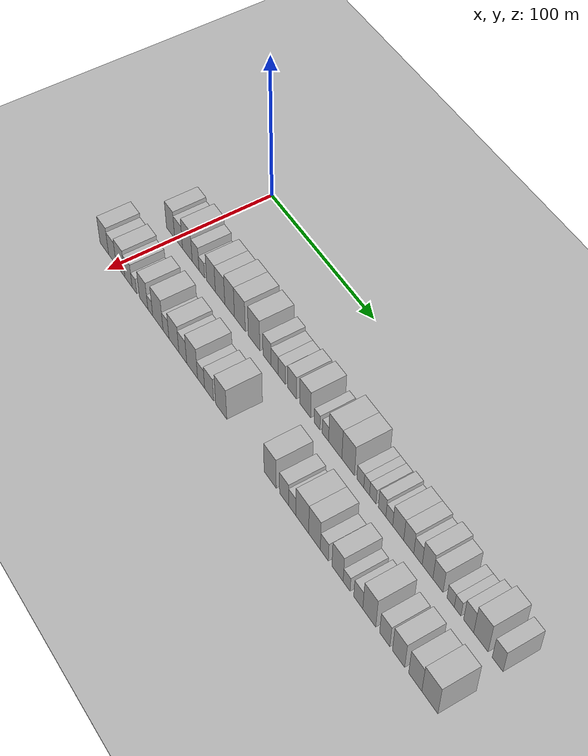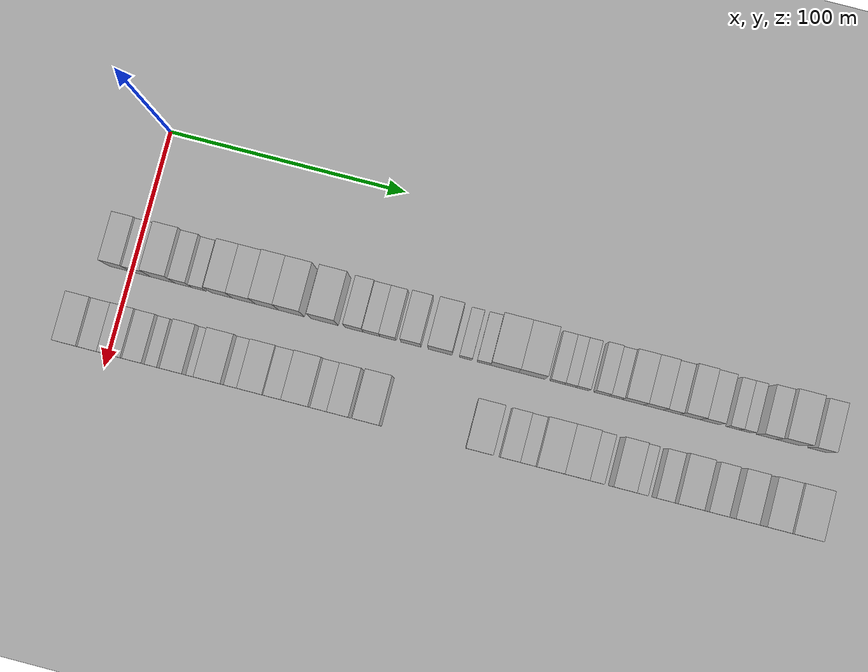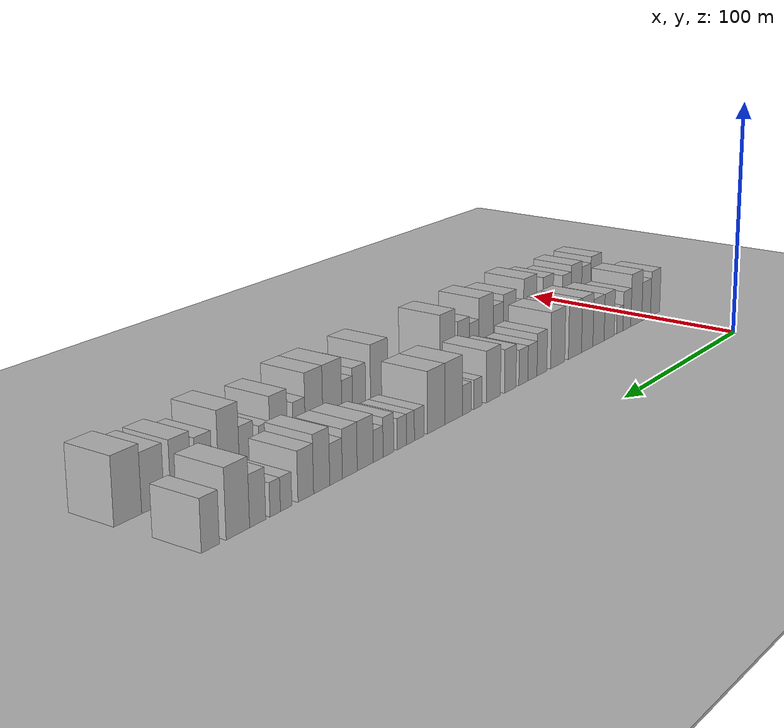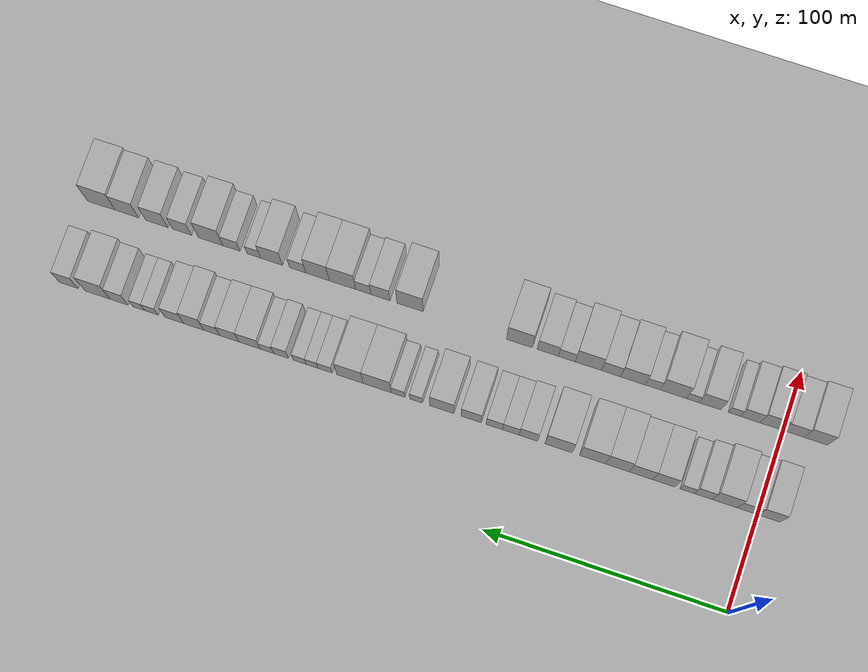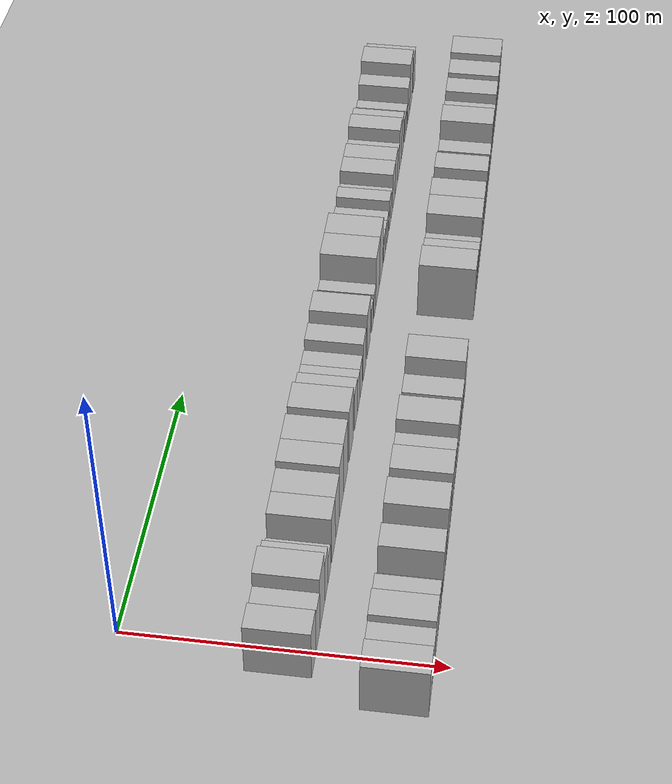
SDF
<sdf version="1.6">
 <world name="default">
  <include><name>ground_plane_1</name><uri>model://HANNAS_ground_plane</uri></include>
  <include>
   <name>ground_plane_2</name>
   <uri>model://HANNAS_ground_plane</uri>
   <pose>100 0 0  0 0 0</pose>
  </include>
  <model name="building_33">
   <static>1</static>
   <pose>50.0000 -4.5877 0 0.000000 0.000000 0.000000</pose>
   <link name="link">
    <pose>0 0 10.50 0 0 0</pose>
    <collision name="collision"><geometry><box><size>20.0000 8.9723 21.0000</size></box></geometry></collision>
    <visual name="visual">
     <cast_shadows>0</cast_shadows>
     <geometry><box><size>20.0000 8.9723 21.0000</size></box></geometry>
     <material>
      <script>
       <uri>model://HANNAS_wall/materials/scripts</uri>
       <uri>model://HANNAS_wall/materials/textures</uri>
       <name>vrc/HANNAS_wall</name>
      </script>
     </material>
    </visual>
   </link>
  </model>
  <model name="building_34">
   <static>1</static>
   <pose>50.0000 4.1626 0 0.000000 0.000000 0.000000</pose>
   <link name="link">
    <pose>0 0 9.00 0 0 0</pose>
    <collision name="collision"><geometry><box><size>20.0000 8.5283 18.0000</size></box></geometry></collision>
    <visual name="visual">
     <cast_shadows>0</cast_shadows>
     <geometry><box><size>20.0000 8.5283 18.0000</size></box></geometry>
     <material>
      <script>
       <uri>model://HANNAS_wall/materials/scripts</uri>
       <uri>model://HANNAS_wall/materials/textures</uri>
       <name>vrc/HANNAS_wall</name>
      </script>
     </material>
    </visual>
   </link>
  </model>
  <model name="building_35">
   <static>1</static>
   <pose>50.0000 13.5947 0 0.000000 0.000000 0.000000</pose>
   <link name="link">
    <pose>0 0 12.00 0 0 0</pose>
    <collision name="collision"><geometry><box><size>20.0000 10.3360 24.0000</size></box></geometry></collision>
    <visual name="visual">
     <cast_shadows>0</cast_shadows>
     <geometry><box><size>20.0000 10.3360 24.0000</size></box></geometry>
     <material>
      <script>
       <uri>model://HANNAS_wall/materials/scripts</uri>
       <uri>model://HANNAS_wall/materials/textures</uri>
       <name>vrc/HANNAS_wall</name>
      </script>
     </material>
    </visual>
   </link>
  </model>
  <model name="building_36">
   <static>1</static>
   <pose>50.0000 22.3643 0 0.000000 0.000000 0.000000</pose>
   <link name="link">
    <pose>0 0 9.00 0 0 0</pose>
    <collision name="collision"><geometry><box><size>20.0000 7.2032 18.0000</size></box></geometry></collision>
    <visual name="visual">
     <cast_shadows>0</cast_shadows>
     <geometry><box><size>20.0000 7.2032 18.0000</size></box></geometry>
     <material>
      <script>
       <uri>model://HANNAS_wall/materials/scripts</uri>
       <uri>model://HANNAS_wall/materials/textures</uri>
       <name>vrc/HANNAS_wall</name>
      </script>
     </material>
    </visual>
   </link>
  </model>
  <model name="building_37">
   <static>1</static>
   <pose>50.0000 28.9423 0 0.000000 0.000000 0.000000</pose>
   <link name="link">
    <pose>0 0 6.00 0 0 0</pose>
    <collision name="collision"><geometry><box><size>20.0000 5.9528 12.0000</size></box></geometry></collision>
    <visual name="visual">
     <cast_shadows>0</cast_shadows>
     <geometry><box><size>20.0000 5.9528 12.0000</size></box></geometry>
     <material>
      <script>
       <uri>model://HANNAS_wall/materials/scripts</uri>
       <uri>model://HANNAS_wall/materials/textures</uri>
       <name>vrc/HANNAS_wall</name>
      </script>
     </material>
    </visual>
   </link>
  </model>
  <model name="building_38">
   <static>1</static>
   <pose>50.0000 38.4510 0 0.000000 0.000000 0.000000</pose>
   <link name="link">
    <pose>0 0 10.50 0 0 0</pose>
    <collision name="collision"><geometry><box><size>20.0000 9.0646 21.0000</size></box></geometry></collision>
    <visual name="visual">
     <cast_shadows>0</cast_shadows>
     <geometry><box><size>20.0000 9.0646 21.0000</size></box></geometry>
     <material>
      <script>
       <uri>model://HANNAS_wall/materials/scripts</uri>
       <uri>model://HANNAS_wall/materials/textures</uri>
       <name>vrc/HANNAS_wall</name>
      </script>
     </material>
    </visual>
   </link>
  </model>
  <model name="building_39">
   <static>1</static>
   <pose>50.0000 47.8418 0 0.000000 0.000000 0.000000</pose>
   <link name="link">
    <pose>0 0 10.50 0 0 0</pose>
    <collision name="collision"><geometry><box><size>20.0000 9.7169 21.0000</size></box></geometry></collision>
    <visual name="visual">
     <cast_shadows>0</cast_shadows>
     <geometry><box><size>20.0000 9.7169 21.0000</size></box></geometry>
     <material>
      <script>
       <uri>model://HANNAS_wall/materials/scripts</uri>
       <uri>model://HANNAS_wall/materials/textures</uri>
       <name>vrc/HANNAS_wall</name>
      </script>
     </material>
    </visual>
   </link>
  </model>
  <model name="building_40">
   <static>1</static>
   <pose>50.0000 57.5797 0 0.000000 0.000000 0.000000</pose>
   <link name="link">
    <pose>0 0 12.00 0 0 0</pose>
    <collision name="collision"><geometry><box><size>20.0000 9.7589 24.0000</size></box></geometry></collision>
    <visual name="visual">
     <cast_shadows>0</cast_shadows>
     <geometry><box><size>20.0000 9.7589 24.0000</size></box></geometry>
     <material>
      <script>
       <uri>model://HANNAS_wall/materials/scripts</uri>
       <uri>model://HANNAS_wall/materials/textures</uri>
       <name>vrc/HANNAS_wall</name>
      </script>
     </material>
    </visual>
   </link>
  </model>
  <model name="building_41">
   <static>1</static>
   <pose>50.0000 67.8784 0 0.000000 0.000000 0.000000</pose>
   <link name="link">
    <pose>0 0 12.00 0 0 0</pose>
    <collision name="collision"><geometry><box><size>20.0000 10.8384 24.0000</size></box></geometry></collision>
    <visual name="visual">
     <cast_shadows>0</cast_shadows>
     <geometry><box><size>20.0000 10.8384 24.0000</size></box></geometry>
     <material>
      <script>
       <uri>model://HANNAS_wall/materials/scripts</uri>
       <uri>model://HANNAS_wall/materials/textures</uri>
       <name>vrc/HANNAS_wall</name>
      </script>
     </material>
    </visual>
   </link>
  </model>
  <model name="building_42">
   <static>1</static>
   <pose>50.0000 81.9233 0 0.000000 0.000000 0.000000</pose>
   <link name="link">
    <pose>0 0 12.00 0 0 0</pose>
    <collision name="collision"><geometry><box><size>20.0000 11.2516 24.0000</size></box></geometry></collision>
    <visual name="visual">
     <cast_shadows>0</cast_shadows>
     <geometry><box><size>20.0000 11.2516 24.0000</size></box></geometry>
     <material>
      <script>
       <uri>model://HANNAS_wall/materials/scripts</uri>
       <uri>model://HANNAS_wall/materials/textures</uri>
       <name>vrc/HANNAS_wall</name>
      </script>
     </material>
    </visual>
   </link>
  </model>
  <model name="building_43">
   <static>1</static>
   <pose>50.0000 94.3751 0 0.000000 0.000000 0.000000</pose>
   <link name="link">
    <pose>0 0 9.00 0 0 0</pose>
    <collision name="collision"><geometry><box><size>20.0000 7.6520 18.0000</size></box></geometry></collision>
    <visual name="visual">
     <cast_shadows>0</cast_shadows>
     <geometry><box><size>20.0000 7.6520 18.0000</size></box></geometry>
     <material>
      <script>
       <uri>model://HANNAS_wall/materials/scripts</uri>
       <uri>model://HANNAS_wall/materials/textures</uri>
       <name>vrc/HANNAS_wall</name>
      </script>
     </material>
    </visual>
   </link>
  </model>
  <model name="building_44">
   <static>1</static>
   <pose>50.0000 101.6487 0 0.000000 0.000000 0.000000</pose>
   <link name="link">
    <pose>0 0 7.50 0 0 0</pose>
    <collision name="collision"><geometry><box><size>20.0000 6.8953 15.0000</size></box></geometry></collision>
    <visual name="visual">
     <cast_shadows>0</cast_shadows>
     <geometry><box><size>20.0000 6.8953 15.0000</size></box></geometry>
     <material>
      <script>
       <uri>model://HANNAS_wall/materials/scripts</uri>
       <uri>model://HANNAS_wall/materials/textures</uri>
       <name>vrc/HANNAS_wall</name>
      </script>
     </material>
    </visual>
   </link>
  </model>
  <model name="building_45">
   <static>1</static>
   <pose>50.0000 108.5118 0 0.000000 0.000000 0.000000</pose>
   <link name="link">
    <pose>0 0 7.50 0 0 0</pose>
    <collision name="collision"><geometry><box><size>20.0000 6.8308 15.0000</size></box></geometry></collision>
    <visual name="visual">
     <cast_shadows>0</cast_shadows>
     <geometry><box><size>20.0000 6.8308 15.0000</size></box></geometry>
     <material>
      <script>
       <uri>model://HANNAS_wall/materials/scripts</uri>
       <uri>model://HANNAS_wall/materials/textures</uri>
       <name>vrc/HANNAS_wall</name>
      </script>
     </material>
    </visual>
   </link>
  </model>
  <model name="building_46">
   <static>1</static>
   <pose>50.0000 118.1153 0 0.000000 0.000000 0.000000</pose>
   <link name="link">
    <pose>0 0 9.00 0 0 0</pose>
    <collision name="collision"><geometry><box><size>20.0000 8.3763 18.0000</size></box></geometry></collision>
    <visual name="visual">
     <cast_shadows>0</cast_shadows>
     <geometry><box><size>20.0000 8.3763 18.0000</size></box></geometry>
     <material>
      <script>
       <uri>model://HANNAS_wall/materials/scripts</uri>
       <uri>model://HANNAS_wall/materials/textures</uri>
       <name>vrc/HANNAS_wall</name>
      </script>
     </material>
    </visual>
   </link>
  </model>
  <model name="building_47">
   <static>1</static>
   <pose>50.0000 130.3355 0 0.000000 0.000000 0.000000</pose>
   <link name="link">
    <pose>0 0 10.50 0 0 0</pose>
    <collision name="collision"><geometry><box><size>20.0000 10.0640 21.0000</size></box></geometry></collision>
    <visual name="visual">
     <cast_shadows>0</cast_shadows>
     <geometry><box><size>20.0000 10.0640 21.0000</size></box></geometry>
     <material>
      <script>
       <uri>model://HANNAS_wall/materials/scripts</uri>
       <uri>model://HANNAS_wall/materials/textures</uri>
       <name>vrc/HANNAS_wall</name>
      </script>
     </material>
    </visual>
   </link>
  </model>
  <model name="building_48">
   <static>1</static>
   <pose>50.0000 141.0523 0 0.000000 0.000000 0.000000</pose>
   <link name="link">
    <pose>0 0 6.00 0 0 0</pose>
    <collision name="collision"><geometry><box><size>20.0000 5.3695 12.0000</size></box></geometry></collision>
    <visual name="visual">
     <cast_shadows>0</cast_shadows>
     <geometry><box><size>20.0000 5.3695 12.0000</size></box></geometry>
     <material>
      <script>
       <uri>model://HANNAS_wall/materials/scripts</uri>
       <uri>model://HANNAS_wall/materials/textures</uri>
       <name>vrc/HANNAS_wall</name>
      </script>
     </material>
    </visual>
   </link>
  </model>
  <model name="building_49">
   <static>1</static>
   <pose>50.0000 148.5847 0 0.000000 0.000000 0.000000</pose>
   <link name="link">
    <pose>0 0 6.00 0 0 0</pose>
    <collision name="collision"><geometry><box><size>20.0000 5.6953 12.0000</size></box></geometry></collision>
    <visual name="visual">
     <cast_shadows>0</cast_shadows>
     <geometry><box><size>20.0000 5.6953 12.0000</size></box></geometry>
     <material>
      <script>
       <uri>model://HANNAS_wall/materials/scripts</uri>
       <uri>model://HANNAS_wall/materials/textures</uri>
       <name>vrc/HANNAS_wall</name>
      </script>
     </material>
    </visual>
   </link>
  </model>
  <model name="building_50">
   <static>1</static>
   <pose>50.0000 157.2870 0 0.000000 0.000000 0.000000</pose>
   <link name="link">
    <pose>0 0 12.00 0 0 0</pose>
    <collision name="collision"><geometry><box><size>20.0000 11.7093 24.0000</size></box></geometry></collision>
    <visual name="visual">
     <cast_shadows>0</cast_shadows>
     <geometry><box><size>20.0000 11.7093 24.0000</size></box></geometry>
     <material>
      <script>
       <uri>model://HANNAS_wall/materials/scripts</uri>
       <uri>model://HANNAS_wall/materials/textures</uri>
       <name>vrc/HANNAS_wall</name>
      </script>
     </material>
    </visual>
   </link>
  </model>
  <model name="building_51">
   <static>1</static>
   <pose>50.0000 168.6387 0 0.000000 0.000000 0.000000</pose>
   <link name="link">
    <pose>0 0 12.00 0 0 0</pose>
    <collision name="collision"><geometry><box><size>20.0000 10.9941 24.0000</size></box></geometry></collision>
    <visual name="visual">
     <cast_shadows>0</cast_shadows>
     <geometry><box><size>20.0000 10.9941 24.0000</size></box></geometry>
     <material>
      <script>
       <uri>model://HANNAS_wall/materials/scripts</uri>
       <uri>model://HANNAS_wall/materials/textures</uri>
       <name>vrc/HANNAS_wall</name>
      </script>
     </material>
    </visual>
   </link>
  </model>
  <model name="building_52">
   <static>1</static>
   <pose>50.0000 179.1250 0 0.000000 0.000000 0.000000</pose>
   <link name="link">
    <pose>0 0 6.00 0 0 0</pose>
    <collision name="collision"><geometry><box><size>20.0000 5.9785 12.0000</size></box></geometry></collision>
    <visual name="visual">
     <cast_shadows>0</cast_shadows>
     <geometry><box><size>20.0000 5.9785 12.0000</size></box></geometry>
     <material>
      <script>
       <uri>model://HANNAS_wall/materials/scripts</uri>
       <uri>model://HANNAS_wall/materials/textures</uri>
       <name>vrc/HANNAS_wall</name>
      </script>
     </material>
    </visual>
   </link>
  </model>
  <model name="building_53">
   <static>1</static>
   <pose>50.0000 184.5413 0 0.000000 0.000000 0.000000</pose>
   <link name="link">
    <pose>0 0 6.00 0 0 0</pose>
    <collision name="collision"><geometry><box><size>20.0000 4.8540 12.0000</size></box></geometry></collision>
    <visual name="visual">
     <cast_shadows>0</cast_shadows>
     <geometry><box><size>20.0000 4.8540 12.0000</size></box></geometry>
     <material>
      <script>
       <uri>model://HANNAS_wall/materials/scripts</uri>
       <uri>model://HANNAS_wall/materials/textures</uri>
       <name>vrc/HANNAS_wall</name>
      </script>
     </material>
    </visual>
   </link>
  </model>
  <model name="building_54">
   <static>1</static>
   <pose>50.0000 189.7033 0 0.000000 0.000000 0.000000</pose>
   <link name="link">
    <pose>0 0 6.00 0 0 0</pose>
    <collision name="collision"><geometry><box><size>20.0000 5.4699 12.0000</size></box></geometry></collision>
    <visual name="visual">
     <cast_shadows>0</cast_shadows>
     <geometry><box><size>20.0000 5.4699 12.0000</size></box></geometry>
     <material>
      <script>
       <uri>model://HANNAS_wall/materials/scripts</uri>
       <uri>model://HANNAS_wall/materials/textures</uri>
       <name>vrc/HANNAS_wall</name>
      </script>
     </material>
    </visual>
   </link>
  </model>
  <model name="building_55">
   <static>1</static>
   <pose>50.0000 197.5572 0 0.000000 0.000000 0.000000</pose>
   <link name="link">
    <pose>0 0 7.50 0 0 0</pose>
    <collision name="collision"><geometry><box><size>20.0000 6.2379 15.0000</size></box></geometry></collision>
    <visual name="visual">
     <cast_shadows>0</cast_shadows>
     <geometry><box><size>20.0000 6.2379 15.0000</size></box></geometry>
     <material>
      <script>
       <uri>model://HANNAS_wall/materials/scripts</uri>
       <uri>model://HANNAS_wall/materials/textures</uri>
       <name>vrc/HANNAS_wall</name>
      </script>
     </material>
    </visual>
   </link>
  </model>
  <model name="building_56">
   <static>1</static>
   <pose>50.0000 203.4955 0 0.000000 0.000000 0.000000</pose>
   <link name="link">
    <pose>0 0 6.00 0 0 0</pose>
    <collision name="collision"><geometry><box><size>20.0000 5.6386 12.0000</size></box></geometry></collision>
    <visual name="visual">
     <cast_shadows>0</cast_shadows>
     <geometry><box><size>20.0000 5.6386 12.0000</size></box></geometry>
     <material>
      <script>
       <uri>model://HANNAS_wall/materials/scripts</uri>
       <uri>model://HANNAS_wall/materials/textures</uri>
       <name>vrc/HANNAS_wall</name>
      </script>
     </material>
    </visual>
   </link>
  </model>
  <model name="building_57">
   <static>1</static>
   <pose>50.0000 210.8074 0 0.000000 0.000000 0.000000</pose>
   <link name="link">
    <pose>0 0 9.00 0 0 0</pose>
    <collision name="collision"><geometry><box><size>20.0000 8.9853 18.0000</size></box></geometry></collision>
    <visual name="visual">
     <cast_shadows>0</cast_shadows>
     <geometry><box><size>20.0000 8.9853 18.0000</size></box></geometry>
     <material>
      <script>
       <uri>model://HANNAS_wall/materials/scripts</uri>
       <uri>model://HANNAS_wall/materials/textures</uri>
       <name>vrc/HANNAS_wall</name>
      </script>
     </material>
    </visual>
   </link>
  </model>
  <model name="building_58">
   <static>1</static>
   <pose>50.0000 219.3591 0 0.000000 0.000000 0.000000</pose>
   <link name="link">
    <pose>0 0 9.00 0 0 0</pose>
    <collision name="collision"><geometry><box><size>20.0000 8.1181 18.0000</size></box></geometry></collision>
    <visual name="visual">
     <cast_shadows>0</cast_shadows>
     <geometry><box><size>20.0000 8.1181 18.0000</size></box></geometry>
     <material>
      <script>
       <uri>model://HANNAS_wall/materials/scripts</uri>
       <uri>model://HANNAS_wall/materials/textures</uri>
       <name>vrc/HANNAS_wall</name>
      </script>
     </material>
    </visual>
   </link>
  </model>
  <model name="building_59">
   <static>1</static>
   <pose>50.0000 226.7735 0 0.000000 0.000000 0.000000</pose>
   <link name="link">
    <pose>0 0 7.50 0 0 0</pose>
    <collision name="collision"><geometry><box><size>20.0000 6.7106 15.0000</size></box></geometry></collision>
    <visual name="visual">
     <cast_shadows>0</cast_shadows>
     <geometry><box><size>20.0000 6.7106 15.0000</size></box></geometry>
     <material>
      <script>
       <uri>model://HANNAS_wall/materials/scripts</uri>
       <uri>model://HANNAS_wall/materials/textures</uri>
       <name>vrc/HANNAS_wall</name>
      </script>
     </material>
    </visual>
   </link>
  </model>
  <model name="building_60">
   <static>1</static>
   <pose>50.0000 234.3361 0 0.000000 0.000000 0.000000</pose>
   <link name="link">
    <pose>0 0 10.50 0 0 0</pose>
    <collision name="collision"><geometry><box><size>20.0000 8.4145 21.0000</size></box></geometry></collision>
    <visual name="visual">
     <cast_shadows>0</cast_shadows>
     <geometry><box><size>20.0000 8.4145 21.0000</size></box></geometry>
     <material>
      <script>
       <uri>model://HANNAS_wall/materials/scripts</uri>
       <uri>model://HANNAS_wall/materials/textures</uri>
       <name>vrc/HANNAS_wall</name>
      </script>
     </material>
    </visual>
   </link>
  </model>
  <model name="building_61">
   <static>1</static>
   <pose>50.0000 242.5292 0 0.000000 0.000000 0.000000</pose>
   <link name="link">
    <pose>0 0 9.00 0 0 0</pose>
    <collision name="collision"><geometry><box><size>20.0000 7.9718 18.0000</size></box></geometry></collision>
    <visual name="visual">
     <cast_shadows>0</cast_shadows>
     <geometry><box><size>20.0000 7.9718 18.0000</size></box></geometry>
     <material>
      <script>
       <uri>model://HANNAS_wall/materials/scripts</uri>
       <uri>model://HANNAS_wall/materials/textures</uri>
       <name>vrc/HANNAS_wall</name>
      </script>
     </material>
    </visual>
   </link>
  </model>
  <model name="building_62">
   <static>1</static>
   <pose>50.0000 252.3252 0 0.000000 0.000000 0.000000</pose>
   <link name="link">
    <pose>0 0 6.00 0 0 0</pose>
    <collision name="collision"><geometry><box><size>20.0000 5.6201 12.0000</size></box></geometry></collision>
    <visual name="visual">
     <cast_shadows>0</cast_shadows>
     <geometry><box><size>20.0000 5.6201 12.0000</size></box></geometry>
     <material>
      <script>
       <uri>model://HANNAS_wall/materials/scripts</uri>
       <uri>model://HANNAS_wall/materials/textures</uri>
       <name>vrc/HANNAS_wall</name>
      </script>
     </material>
    </visual>
   </link>
  </model>
  <model name="building_63">
   <static>1</static>
   <pose>50.0000 257.6734 0 0.000000 0.000000 0.000000</pose>
   <link name="link">
    <pose>0 0 6.00 0 0 0</pose>
    <collision name="collision"><geometry><box><size>20.0000 5.0763 12.0000</size></box></geometry></collision>
    <visual name="visual">
     <cast_shadows>0</cast_shadows>
     <geometry><box><size>20.0000 5.0763 12.0000</size></box></geometry>
     <material>
      <script>
       <uri>model://HANNAS_wall/materials/scripts</uri>
       <uri>model://HANNAS_wall/materials/textures</uri>
       <name>vrc/HANNAS_wall</name>
      </script>
     </material>
    </visual>
   </link>
  </model>
  <model name="building_64">
   <static>1</static>
   <pose>50.0000 266.0096 0 0.000000 0.000000 0.000000</pose>
   <link name="link">
    <pose>0 0 9.00 0 0 0</pose>
    <collision name="collision"><geometry><box><size>20.0000 7.5961 18.0000</size></box></geometry></collision>
    <visual name="visual">
     <cast_shadows>0</cast_shadows>
     <geometry><box><size>20.0000 7.5961 18.0000</size></box></geometry>
     <material>
      <script>
       <uri>model://HANNAS_wall/materials/scripts</uri>
       <uri>model://HANNAS_wall/materials/textures</uri>
       <name>vrc/HANNAS_wall</name>
      </script>
     </material>
    </visual>
   </link>
  </model>
  <model name="building_65">
   <static>1</static>
   <pose>50.0000 275.1720 0 0.000000 0.000000 0.000000</pose>
   <link name="link">
    <pose>0 0 12.00 0 0 0</pose>
    <collision name="collision"><geometry><box><size>20.0000 10.7287 24.0000</size></box></geometry></collision>
    <visual name="visual">
     <cast_shadows>0</cast_shadows>
     <geometry><box><size>20.0000 10.7287 24.0000</size></box></geometry>
     <material>
      <script>
       <uri>model://HANNAS_wall/materials/scripts</uri>
       <uri>model://HANNAS_wall/materials/textures</uri>
       <name>vrc/HANNAS_wall</name>
      </script>
     </material>
    </visual>
   </link>
  </model>
  <model name="building_66">
   <static>1</static>
   <pose>50.0000 287.4961 0 0.000000 0.000000 0.000000</pose>
   <link name="link">
    <pose>0 0 9.00 0 0 0</pose>
    <collision name="collision"><geometry><box><size>20.0000 7.9195 18.0000</size></box></geometry></collision>
    <visual name="visual">
     <cast_shadows>0</cast_shadows>
     <geometry><box><size>20.0000 7.9195 18.0000</size></box></geometry>
     <material>
      <script>
       <uri>model://HANNAS_wall/materials/scripts</uri>
       <uri>model://HANNAS_wall/materials/textures</uri>
       <name>vrc/HANNAS_wall</name>
      </script>
     </material>
    </visual>
   </link>
  </model>
  <model name="building_98">
   <static>1</static>
   <pose>85.0000 -13.1399 0 0.000000 0.000000 0.000000</pose>
   <link name="link">
    <pose>0 0 10.50 0 0 0</pose>
    <collision name="collision"><geometry><box><size>20.0000 9.7922 21.0000</size></box></geometry></collision>
    <visual name="visual">
     <cast_shadows>0</cast_shadows>
     <geometry><box><size>20.0000 9.7922 21.0000</size></box></geometry>
     <material>
      <script>
       <uri>model://HANNAS_wall/materials/scripts</uri>
       <uri>model://HANNAS_wall/materials/textures</uri>
       <name>vrc/HANNAS_wall</name>
      </script>
     </material>
    </visual>
   </link>
  </model>
  <model name="building_99">
   <static>1</static>
   <pose>85.0000 -3.9786 0 0.000000 0.000000 0.000000</pose>
   <link name="link">
    <pose>0 0 9.00 0 0 0</pose>
    <collision name="collision"><geometry><box><size>20.0000 8.5305 18.0000</size></box></geometry></collision>
    <visual name="visual">
     <cast_shadows>0</cast_shadows>
     <geometry><box><size>20.0000 8.5305 18.0000</size></box></geometry>
     <material>
      <script>
       <uri>model://HANNAS_wall/materials/scripts</uri>
       <uri>model://HANNAS_wall/materials/textures</uri>
       <name>vrc/HANNAS_wall</name>
      </script>
     </material>
    </visual>
   </link>
  </model>
  <model name="building_100">
   <static>1</static>
   <pose>85.0000 5.1017 0 0.000000 0.000000 0.000000</pose>
   <link name="link">
    <pose>0 0 10.50 0 0 0</pose>
    <collision name="collision"><geometry><box><size>20.0000 9.6301 21.0000</size></box></geometry></collision>
    <visual name="visual">
     <cast_shadows>0</cast_shadows>
     <geometry><box><size>20.0000 9.6301 21.0000</size></box></geometry>
     <material>
      <script>
       <uri>model://HANNAS_wall/materials/scripts</uri>
       <uri>model://HANNAS_wall/materials/textures</uri>
       <name>vrc/HANNAS_wall</name>
      </script>
     </material>
    </visual>
   </link>
  </model>
  <model name="building_101">
   <static>1</static>
   <pose>85.0000 13.8986 0 0.000000 0.000000 0.000000</pose>
   <link name="link">
    <pose>0 0 9.00 0 0 0</pose>
    <collision name="collision"><geometry><box><size>20.0000 7.9635 18.0000</size></box></geometry></collision>
    <visual name="visual">
     <cast_shadows>0</cast_shadows>
     <geometry><box><size>20.0000 7.9635 18.0000</size></box></geometry>
     <material>
      <script>
       <uri>model://HANNAS_wall/materials/scripts</uri>
       <uri>model://HANNAS_wall/materials/textures</uri>
       <name>vrc/HANNAS_wall</name>
      </script>
     </material>
    </visual>
   </link>
  </model>
  <model name="building_102">
   <static>1</static>
   <pose>85.0000 20.4104 0 0.000000 0.000000 0.000000</pose>
   <link name="link">
    <pose>0 0 6.00 0 0 0</pose>
    <collision name="collision"><geometry><box><size>20.0000 5.0601 12.0000</size></box></geometry></collision>
    <visual name="visual">
     <cast_shadows>0</cast_shadows>
     <geometry><box><size>20.0000 5.0601 12.0000</size></box></geometry>
     <material>
      <script>
       <uri>model://HANNAS_wall/materials/scripts</uri>
       <uri>model://HANNAS_wall/materials/textures</uri>
       <name>vrc/HANNAS_wall</name>
      </script>
     </material>
    </visual>
   </link>
  </model>
  <model name="building_103">
   <static>1</static>
   <pose>85.0000 30.4534 0 0.000000 0.000000 0.000000</pose>
   <link name="link">
    <pose>0 0 10.50 0 0 0</pose>
    <collision name="collision"><geometry><box><size>20.0000 9.0258 21.0000</size></box></geometry></collision>
    <visual name="visual">
     <cast_shadows>0</cast_shadows>
     <geometry><box><size>20.0000 9.0258 21.0000</size></box></geometry>
     <material>
      <script>
       <uri>model://HANNAS_wall/materials/scripts</uri>
       <uri>model://HANNAS_wall/materials/textures</uri>
       <name>vrc/HANNAS_wall</name>
      </script>
     </material>
    </visual>
   </link>
  </model>
  <model name="building_104">
   <static>1</static>
   <pose>85.0000 37.5661 0 0.000000 0.000000 0.000000</pose>
   <link name="link">
    <pose>0 0 6.00 0 0 0</pose>
    <collision name="collision"><geometry><box><size>20.0000 5.1998 12.0000</size></box></geometry></collision>
    <visual name="visual">
     <cast_shadows>0</cast_shadows>
     <geometry><box><size>20.0000 5.1998 12.0000</size></box></geometry>
     <material>
      <script>
       <uri>model://HANNAS_wall/materials/scripts</uri>
       <uri>model://HANNAS_wall/materials/textures</uri>
       <name>vrc/HANNAS_wall</name>
      </script>
     </material>
    </visual>
   </link>
  </model>
  <model name="building_105">
   <static>1</static>
   <pose>85.0000 45.6126 0 0.000000 0.000000 0.000000</pose>
   <link name="link">
    <pose>0 0 12.00 0 0 0</pose>
    <collision name="collision"><geometry><box><size>20.0000 10.8932 24.0000</size></box></geometry></collision>
    <visual name="visual">
     <cast_shadows>0</cast_shadows>
     <geometry><box><size>20.0000 10.8932 24.0000</size></box></geometry>
     <material>
      <script>
       <uri>model://HANNAS_wall/materials/scripts</uri>
       <uri>model://HANNAS_wall/materials/textures</uri>
       <name>vrc/HANNAS_wall</name>
      </script>
     </material>
    </visual>
   </link>
  </model>
  <model name="building_106">
   <static>1</static>
   <pose>85.0000 54.1514 0 0.000000 0.000000 0.000000</pose>
   <link name="link">
    <pose>0 0 7.50 0 0 0</pose>
    <collision name="collision"><geometry><box><size>20.0000 6.1843 15.0000</size></box></geometry></collision>
    <visual name="visual">
     <cast_shadows>0</cast_shadows>
     <geometry><box><size>20.0000 6.1843 15.0000</size></box></geometry>
     <material>
      <script>
       <uri>model://HANNAS_wall/materials/scripts</uri>
       <uri>model://HANNAS_wall/materials/textures</uri>
       <name>vrc/HANNAS_wall</name>
      </script>
     </material>
    </visual>
   </link>
  </model>
  <model name="building_107">
   <static>1</static>
   <pose>85.0000 62.3635 0 0.000000 0.000000 0.000000</pose>
   <link name="link">
    <pose>0 0 10.50 0 0 0</pose>
    <collision name="collision"><geometry><box><size>20.0000 10.2400 21.0000</size></box></geometry></collision>
    <visual name="visual">
     <cast_shadows>0</cast_shadows>
     <geometry><box><size>20.0000 10.2400 21.0000</size></box></geometry>
     <material>
      <script>
       <uri>model://HANNAS_wall/materials/scripts</uri>
       <uri>model://HANNAS_wall/materials/textures</uri>
       <name>vrc/HANNAS_wall</name>
      </script>
     </material>
    </visual>
   </link>
  </model>
  <model name="building_108">
   <static>1</static>
   <pose>85.0000 71.4836 0 0.000000 0.000000 0.000000</pose>
   <link name="link">
    <pose>0 0 9.00 0 0 0</pose>
    <collision name="collision"><geometry><box><size>20.0000 8.0002 18.0000</size></box></geometry></collision>
    <visual name="visual">
     <cast_shadows>0</cast_shadows>
     <geometry><box><size>20.0000 8.0002 18.0000</size></box></geometry>
     <material>
      <script>
       <uri>model://HANNAS_wall/materials/scripts</uri>
       <uri>model://HANNAS_wall/materials/textures</uri>
       <name>vrc/HANNAS_wall</name>
      </script>
     </material>
    </visual>
   </link>
  </model>
  <model name="building_109">
   <static>1</static>
   <pose>85.0000 80.9327 0 0.000000 0.000000 0.000000</pose>
   <link name="link">
    <pose>0 0 12.00 0 0 0</pose>
    <collision name="collision"><geometry><box><size>20.0000 10.8981 24.0000</size></box></geometry></collision>
    <visual name="visual">
     <cast_shadows>0</cast_shadows>
     <geometry><box><size>20.0000 10.8981 24.0000</size></box></geometry>
     <material>
      <script>
       <uri>model://HANNAS_wall/materials/scripts</uri>
       <uri>model://HANNAS_wall/materials/textures</uri>
       <name>vrc/HANNAS_wall</name>
      </script>
     </material>
    </visual>
   </link>
  </model>
  <model name="building_110">
   <static>1</static>
   <pose>85.0000 89.8849 0 0.000000 0.000000 0.000000</pose>
   <link name="link">
    <pose>0 0 7.50 0 0 0</pose>
    <collision name="collision"><geometry><box><size>20.0000 7.0063 15.0000</size></box></geometry></collision>
    <visual name="visual">
     <cast_shadows>0</cast_shadows>
     <geometry><box><size>20.0000 7.0063 15.0000</size></box></geometry>
     <material>
      <script>
       <uri>model://HANNAS_wall/materials/scripts</uri>
       <uri>model://HANNAS_wall/materials/textures</uri>
       <name>vrc/HANNAS_wall</name>
      </script>
     </material>
    </visual>
   </link>
  </model>
  <model name="building_111">
   <static>1</static>
   <pose>85.0000 97.7975 0 0.000000 0.000000 0.000000</pose>
   <link name="link">
    <pose>0 0 9.00 0 0 0</pose>
    <collision name="collision"><geometry><box><size>20.0000 8.8188 18.0000</size></box></geometry></collision>
    <visual name="visual">
     <cast_shadows>0</cast_shadows>
     <geometry><box><size>20.0000 8.8188 18.0000</size></box></geometry>
     <material>
      <script>
       <uri>model://HANNAS_wall/materials/scripts</uri>
       <uri>model://HANNAS_wall/materials/textures</uri>
       <name>vrc/HANNAS_wall</name>
      </script>
     </material>
    </visual>
   </link>
  </model>
  <model name="building_112">
   <static>1</static>
   <pose>85.0000 109.6168 0 0.000000 0.000000 0.000000</pose>
   <link name="link">
    <pose>0 0 12.00 0 0 0</pose>
    <collision name="collision"><geometry><box><size>20.0000 10.8198 24.0000</size></box></geometry></collision>
    <visual name="visual">
     <cast_shadows>0</cast_shadows>
     <geometry><box><size>20.0000 10.8198 24.0000</size></box></geometry>
     <material>
      <script>
       <uri>model://HANNAS_wall/materials/scripts</uri>
       <uri>model://HANNAS_wall/materials/textures</uri>
       <name>vrc/HANNAS_wall</name>
      </script>
     </material>
    </visual>
   </link>
  </model>
  <model name="building_113">
   <static>1</static>
   <pose>85.0000 155.4636 0 0.000000 0.000000 0.000000</pose>
   <link name="link">
    <pose>0 0 12.00 0 0 0</pose>
    <collision name="collision"><geometry><box><size>20.0000 10.9580 24.0000</size></box></geometry></collision>
    <visual name="visual">
     <cast_shadows>0</cast_shadows>
     <geometry><box><size>20.0000 10.9580 24.0000</size></box></geometry>
     <material>
      <script>
       <uri>model://HANNAS_wall/materials/scripts</uri>
       <uri>model://HANNAS_wall/materials/textures</uri>
       <name>vrc/HANNAS_wall</name>
      </script>
     </material>
    </visual>
   </link>
  </model>
  <model name="building_114">
   <static>1</static>
   <pose>85.0000 167.9820 0 0.000000 0.000000 0.000000</pose>
   <link name="link">
    <pose>0 0 9.00 0 0 0</pose>
    <collision name="collision"><geometry><box><size>20.0000 8.0789 18.0000</size></box></geometry></collision>
    <visual name="visual">
     <cast_shadows>0</cast_shadows>
     <geometry><box><size>20.0000 8.0789 18.0000</size></box></geometry>
     <material>
      <script>
       <uri>model://HANNAS_wall/materials/scripts</uri>
       <uri>model://HANNAS_wall/materials/textures</uri>
       <name>vrc/HANNAS_wall</name>
      </script>
     </material>
    </visual>
   </link>
  </model>
  <model name="building_115">
   <static>1</static>
   <pose>85.0000 175.2286 0 0.000000 0.000000 0.000000</pose>
   <link name="link">
    <pose>0 0 7.50 0 0 0</pose>
    <collision name="collision"><geometry><box><size>20.0000 6.4142 15.0000</size></box></geometry></collision>
    <visual name="visual">
     <cast_shadows>0</cast_shadows>
     <geometry><box><size>20.0000 6.4142 15.0000</size></box></geometry>
     <material>
      <script>
       <uri>model://HANNAS_wall/materials/scripts</uri>
       <uri>model://HANNAS_wall/materials/textures</uri>
       <name>vrc/HANNAS_wall</name>
      </script>
     </material>
    </visual>
   </link>
  </model>
  <model name="building_116">
   <static>1</static>
   <pose>85.0000 183.9960 0 0.000000 0.000000 0.000000</pose>
   <link name="link">
    <pose>0 0 12.00 0 0 0</pose>
    <collision name="collision"><geometry><box><size>20.0000 11.1207 24.0000</size></box></geometry></collision>
    <visual name="visual">
     <cast_shadows>0</cast_shadows>
     <geometry><box><size>20.0000 11.1207 24.0000</size></box></geometry>
     <material>
      <script>
       <uri>model://HANNAS_wall/materials/scripts</uri>
       <uri>model://HANNAS_wall/materials/textures</uri>
       <name>vrc/HANNAS_wall</name>
      </script>
     </material>
    </visual>
   </link>
  </model>
  <model name="building_117">
   <static>1</static>
   <pose>85.0000 194.5532 0 0.000000 0.000000 0.000000</pose>
   <link name="link">
    <pose>0 0 12.00 0 0 0</pose>
    <collision name="collision"><geometry><box><size>20.0000 9.9937 24.0000</size></box></geometry></collision>
    <visual name="visual">
     <cast_shadows>0</cast_shadows>
     <geometry><box><size>20.0000 9.9937 24.0000</size></box></geometry>
     <material>
      <script>
       <uri>model://HANNAS_wall/materials/scripts</uri>
       <uri>model://HANNAS_wall/materials/textures</uri>
       <name>vrc/HANNAS_wall</name>
      </script>
     </material>
    </visual>
   </link>
  </model>
  <model name="building_118">
   <static>1</static>
   <pose>85.0000 202.9488 0 0.000000 0.000000 0.000000</pose>
   <link name="link">
    <pose>0 0 7.50 0 0 0</pose>
    <collision name="collision"><geometry><box><size>20.0000 6.7975 15.0000</size></box></geometry></collision>
    <visual name="visual">
     <cast_shadows>0</cast_shadows>
     <geometry><box><size>20.0000 6.7975 15.0000</size></box></geometry>
     <material>
      <script>
       <uri>model://HANNAS_wall/materials/scripts</uri>
       <uri>model://HANNAS_wall/materials/textures</uri>
       <name>vrc/HANNAS_wall</name>
      </script>
     </material>
    </visual>
   </link>
  </model>
  <model name="building_119">
   <static>1</static>
   <pose>85.0000 214.0298 0 0.000000 0.000000 0.000000</pose>
   <link name="link">
    <pose>0 0 10.50 0 0 0</pose>
    <collision name="collision"><geometry><box><size>20.0000 9.3645 21.0000</size></box></geometry></collision>
    <visual name="visual">
     <cast_shadows>0</cast_shadows>
     <geometry><box><size>20.0000 9.3645 21.0000</size></box></geometry>
     <material>
      <script>
       <uri>model://HANNAS_wall/materials/scripts</uri>
       <uri>model://HANNAS_wall/materials/textures</uri>
       <name>vrc/HANNAS_wall</name>
      </script>
     </material>
    </visual>
   </link>
  </model>
  <model name="building_120">
   <static>1</static>
   <pose>85.0000 221.5511 0 0.000000 0.000000 0.000000</pose>
   <link name="link">
    <pose>0 0 6.00 0 0 0</pose>
    <collision name="collision"><geometry><box><size>20.0000 5.6780 12.0000</size></box></geometry></collision>
    <visual name="visual">
     <cast_shadows>0</cast_shadows>
     <geometry><box><size>20.0000 5.6780 12.0000</size></box></geometry>
     <material>
      <script>
       <uri>model://HANNAS_wall/materials/scripts</uri>
       <uri>model://HANNAS_wall/materials/textures</uri>
       <name>vrc/HANNAS_wall</name>
      </script>
     </material>
    </visual>
   </link>
  </model>
  <model name="building_121">
   <static>1</static>
   <pose>85.0000 231.0496 0 0.000000 0.000000 0.000000</pose>
   <link name="link">
    <pose>0 0 7.50 0 0 0</pose>
    <collision name="collision"><geometry><box><size>20.0000 7.3190 15.0000</size></box></geometry></collision>
    <visual name="visual">
     <cast_shadows>0</cast_shadows>
     <geometry><box><size>20.0000 7.3190 15.0000</size></box></geometry>
     <material>
      <script>
       <uri>model://HANNAS_wall/materials/scripts</uri>
       <uri>model://HANNAS_wall/materials/textures</uri>
       <name>vrc/HANNAS_wall</name>
      </script>
     </material>
    </visual>
   </link>
  </model>
  <model name="building_122">
   <static>1</static>
   <pose>85.0000 239.9237 0 0.000000 0.000000 0.000000</pose>
   <link name="link">
    <pose>0 0 12.00 0 0 0</pose>
    <collision name="collision"><geometry><box><size>20.0000 10.4294 24.0000</size></box></geometry></collision>
    <visual name="visual">
     <cast_shadows>0</cast_shadows>
     <geometry><box><size>20.0000 10.4294 24.0000</size></box></geometry>
     <material>
      <script>
       <uri>model://HANNAS_wall/materials/scripts</uri>
       <uri>model://HANNAS_wall/materials/textures</uri>
       <name>vrc/HANNAS_wall</name>
      </script>
     </material>
    </visual>
   </link>
  </model>
  <model name="building_123">
   <static>1</static>
   <pose>85.0000 252.1709 0 0.000000 0.000000 0.000000</pose>
   <link name="link">
    <pose>0 0 9.00 0 0 0</pose>
    <collision name="collision"><geometry><box><size>20.0000 8.0648 18.0000</size></box></geometry></collision>
    <visual name="visual">
     <cast_shadows>0</cast_shadows>
     <geometry><box><size>20.0000 8.0648 18.0000</size></box></geometry>
     <material>
      <script>
       <uri>model://HANNAS_wall/materials/scripts</uri>
       <uri>model://HANNAS_wall/materials/textures</uri>
       <name>vrc/HANNAS_wall</name>
      </script>
     </material>
    </visual>
   </link>
  </model>
  <model name="building_124">
   <static>1</static>
   <pose>85.0000 262.9520 0 0.000000 0.000000 0.000000</pose>
   <link name="link">
    <pose>0 0 10.50 0 0 0</pose>
    <collision name="collision"><geometry><box><size>20.0000 9.4973 21.0000</size></box></geometry></collision>
    <visual name="visual">
     <cast_shadows>0</cast_shadows>
     <geometry><box><size>20.0000 9.4973 21.0000</size></box></geometry>
     <material>
      <script>
       <uri>model://HANNAS_wall/materials/scripts</uri>
       <uri>model://HANNAS_wall/materials/textures</uri>
       <name>vrc/HANNAS_wall</name>
      </script>
     </material>
    </visual>
   </link>
  </model>
  <model name="building_125">
   <static>1</static>
   <pose>85.0000 275.6958 0 0.000000 0.000000 0.000000</pose>
   <link name="link">
    <pose>0 0 10.50 0 0 0</pose>
    <collision name="collision"><geometry><box><size>20.0000 9.9903 21.0000</size></box></geometry></collision>
    <visual name="visual">
     <cast_shadows>0</cast_shadows>
     <geometry><box><size>20.0000 9.9903 21.0000</size></box></geometry>
     <material>
      <script>
       <uri>model://HANNAS_wall/materials/scripts</uri>
       <uri>model://HANNAS_wall/materials/textures</uri>
       <name>vrc/HANNAS_wall</name>
      </script>
     </material>
    </visual>
   </link>
  </model>
  <model name="building_126">
   <static>1</static>
   <pose>85.0000 286.6868 0 0.000000 0.000000 0.000000</pose>
   <link name="link">
    <pose>0 0 12.00 0 0 0</pose>
    <collision name="collision"><geometry><box><size>20.0000 11.9917 24.0000</size></box></geometry></collision>
    <visual name="visual">
     <cast_shadows>0</cast_shadows>
     <geometry><box><size>20.0000 11.9917 24.0000</size></box></geometry>
     <material>
      <script>
       <uri>model://HANNAS_wall/materials/scripts</uri>
       <uri>model://HANNAS_wall/materials/textures</uri>
       <name>vrc/HANNAS_wall</name>
      </script>
     </material>
    </visual>
   </link>
  </model>
 </world>
</sdf>
